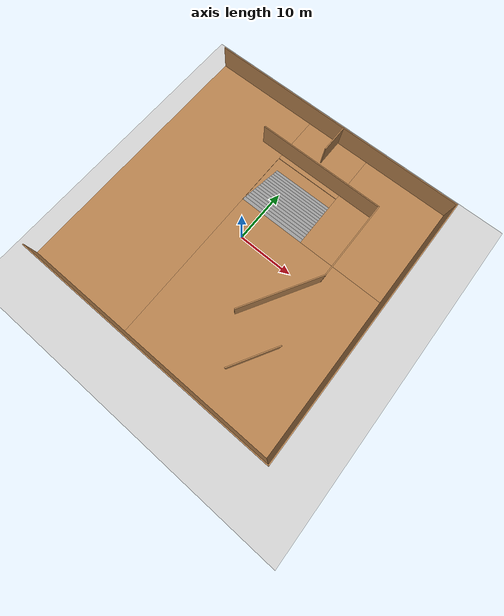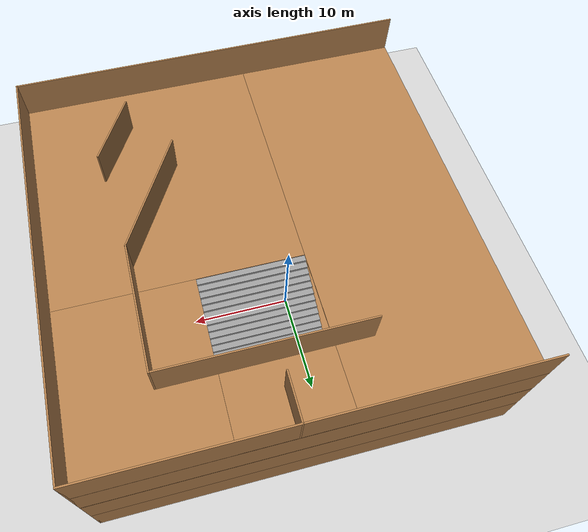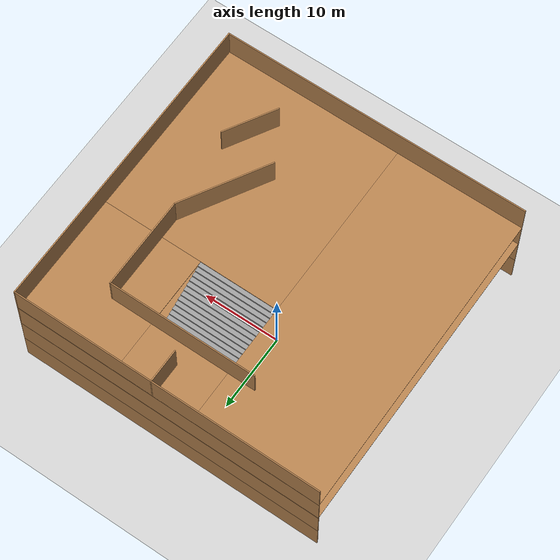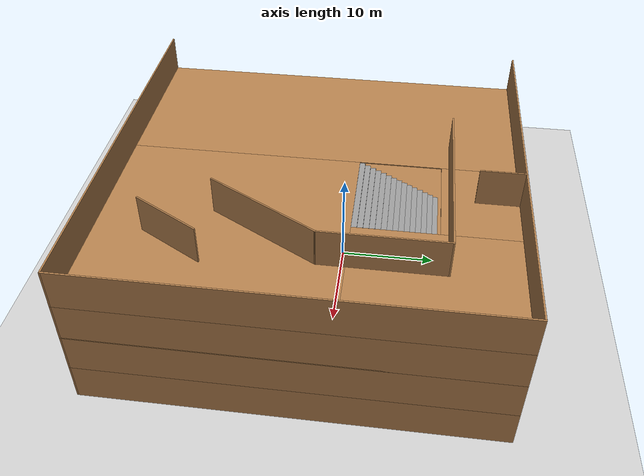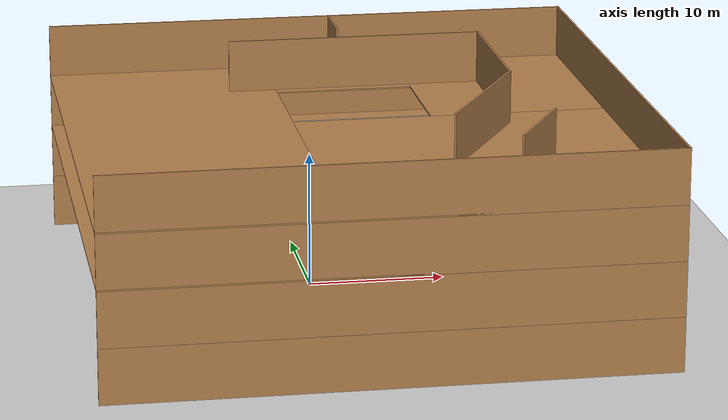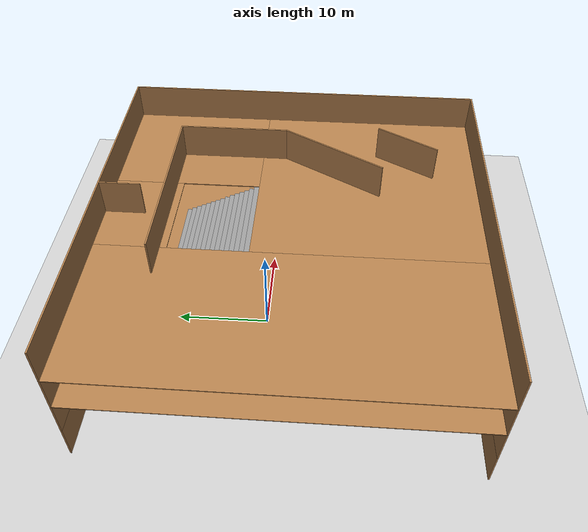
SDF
<sdf version="1.7">
 <world name="default">
  <model name="ground_plane">
   <static>1</static>
   <link name="link">
    <collision name="collision">
     <geometry><plane><normal>0 0 1</normal><size>100 100</size></plane></geometry>
     <surface>
      <contact><collide_bitmask>65535</collide_bitmask></contact>
      <friction><ode><mu>100</mu><mu2>50</mu2></ode></friction>
     </surface>
    </collision>
    <visual name="visual">
     <cast_shadows>0</cast_shadows>
     <geometry><plane><normal>0 0 1</normal><size>100 100</size></plane></geometry>
     <material>
      <script><uri>file://media/materials/scripts/gazebo.material</uri><name>Gazebo/Grey</name></script>
     </material>
    </visual>
   </link>
  </model>
  <model name="building_4F">
   <pose>2.42906 -2.56558 0 0 -0 0</pose>
   <link name="Floor_2">
    <collision name="Floor_2_Collision">
     <geometry><box><size>40.15 40.15 0.1</size></box></geometry>
     <pose>0 0 0.05 0 -0 0</pose>
    </collision>
    <visual name="Floor_2_Visual">
     <pose>0 0 0.05 0 -0 0</pose>
     <geometry><box><size>40.15 40.15 0.1</size></box></geometry>
     <material>
      <script><uri>file://media/materials/scripts/gazebo.material</uri><name>Gazebo/Wood</name></script>
      <ambient>1 1 1 1</ambient>
     </material>
     <meta><layer>2</layer></meta>
    </visual>
    <pose>0.015532 0 8 0 -0 0</pose>
   </link>
   <link name="Floor_3">
    <pose>0.009806 0 12 0 -0 0</pose>
    <visual name="Floor_3_Visual_0">
     <pose>-11.7562 0 0.05 0 -0 0</pose>
     <geometry><box><size>16.6486 40.15 0.1</size></box></geometry>
     <material>
      <script><uri>file://media/materials/scripts/gazebo.material</uri><name>Gazebo/Wood</name></script>
      <ambient>1 1 1 1</ambient>
     </material>
     <meta><layer>3</layer></meta>
    </visual>
    <collision name="Floor_3_Collision_0">
     <geometry><box><size>16.6486 40.15 0.1</size></box></geometry>
     <pose>-11.7562 0 0.05 0 -0 0</pose>
    </collision>
    <visual name="Floor_3_Visual_1">
     <pose>8.32428 -8.0284 0.05 0 -0 0</pose>
     <geometry><box><size>23.5125 24.0932 0.1</size></box></geometry>
     <material>
      <script><uri>file://media/materials/scripts/gazebo.material</uri><name>Gazebo/Wood</name></script>
      <ambient>1 1 1 1</ambient>
     </material>
     <meta><layer>3</layer></meta>
    </visual>
    <collision name="Floor_3_Collision_1">
     <geometry><box><size>23.5125 24.0932 0.1</size></box></geometry>
     <pose>8.32428 -8.0284 0.05 0 -0 0</pose>
    </collision>
    <visual name="Floor_3_Visual_2">
     <pose>13.4528 12.0466 0.05 0 -0 0</pose>
     <geometry><box><size>13.2555 16.0568 0.1</size></box></geometry>
     <material>
      <script><uri>file://media/materials/scripts/gazebo.material</uri><name>Gazebo/Wood</name></script>
      <ambient>1 1 1 1</ambient>
     </material>
     <meta><layer>3</layer></meta>
    </visual>
    <collision name="Floor_3_Collision_2">
     <geometry><box><size>13.2555 16.0568 0.1</size></box></geometry>
     <pose>13.4528 12.0466 0.05 0 -0 0</pose>
    </collision>
    <visual name="Floor_3_Visual_3">
     <pose>1.69654 16.2301 0.05 0 -0 0</pose>
     <geometry><box><size>10.257 7.6898 0.1</size></box></geometry>
     <material>
      <script><uri>file://media/materials/scripts/gazebo.material</uri><name>Gazebo/Wood</name></script>
      <ambient>1 1 1 1</ambient>
     </material>
     <meta><layer>3</layer></meta>
    </visual>
    <collision name="Floor_3_Collision_3">
     <geometry><box><size>10.257 7.6898 0.1</size></box></geometry>
     <pose>1.69654 16.2301 0.05 0 -0 0</pose>
    </collision>
   </link>
   <link name="Stairs_3">
    <visual name="Stairs_3_Visual_0">
     <pose>1.70634 12.1063 8.13333 0 -0 0</pose>
     <geometry><box><size>10.257 0.5578 0.266667</size></box></geometry>
     <material>
      <script><uri>file://media/materials/scripts/gazebo.material</uri><name>Gazebo/Grey</name></script>
      <ambient>1 1 1 1</ambient>
     </material>
     <meta><layer>2</layer></meta>
    </visual>
    <collision name="Stairs_3_Collision_0">
     <geometry><box><size>10.257 0.5578 0.266667</size></box></geometry>
     <pose>1.70634 12.1063 8.13333 0 -0 0</pose>
    </collision>
    <visual name="Stairs_3_Visual_1">
     <pose>1.70634 11.5485 8.4 0 -0 0</pose>
     <geometry><box><size>10.257 0.5578 0.266667</size></box></geometry>
     <material>
      <script><uri>file://media/materials/scripts/gazebo.material</uri><name>Gazebo/Grey</name></script>
      <ambient>1 1 1 1</ambient>
     </material>
     <meta><layer>2</layer></meta>
    </visual>
    <collision name="Stairs_3_Collision_1">
     <geometry><box><size>10.257 0.5578 0.266667</size></box></geometry>
     <pose>1.70634 11.5485 8.4 0 -0 0</pose>
    </collision>
    <visual name="Stairs_3_Visual_2">
     <pose>1.70634 10.9907 8.66667 0 -0 0</pose>
     <geometry><box><size>10.257 0.5578 0.266667</size></box></geometry>
     <material>
      <script><uri>file://media/materials/scripts/gazebo.material</uri><name>Gazebo/Grey</name></script>
      <ambient>1 1 1 1</ambient>
     </material>
     <meta><layer>2</layer></meta>
    </visual>
    <collision name="Stairs_3_Collision_2">
     <geometry><box><size>10.257 0.5578 0.266667</size></box></geometry>
     <pose>1.70634 10.9907 8.66667 0 -0 0</pose>
    </collision>
    <visual name="Stairs_3_Visual_3">
     <pose>1.70634 10.4329 8.93333 0 -0 0</pose>
     <geometry><box><size>10.257 0.5578 0.266667</size></box></geometry>
     <material>
      <script><uri>file://media/materials/scripts/gazebo.material</uri><name>Gazebo/Grey</name></script>
      <ambient>1 1 1 1</ambient>
     </material>
     <meta><layer>2</layer></meta>
    </visual>
    <collision name="Stairs_3_Collision_3">
     <geometry><box><size>10.257 0.5578 0.266667</size></box></geometry>
     <pose>1.70634 10.4329 8.93333 0 -0 0</pose>
    </collision>
    <visual name="Stairs_3_Visual_4">
     <pose>1.70634 9.8751 9.2 0 -0 0</pose>
     <geometry><box><size>10.257 0.5578 0.266667</size></box></geometry>
     <material>
      <script><uri>file://media/materials/scripts/gazebo.material</uri><name>Gazebo/Grey</name></script>
      <ambient>1 1 1 1</ambient>
     </material>
     <meta><layer>2</layer></meta>
    </visual>
    <collision name="Stairs_3_Collision_4">
     <geometry><box><size>10.257 0.5578 0.266667</size></box></geometry>
     <pose>1.70634 9.8751 9.2 0 -0 0</pose>
    </collision>
    <visual name="Stairs_3_Visual_5">
     <pose>1.70634 9.3173 9.46667 0 -0 0</pose>
     <geometry><box><size>10.257 0.5578 0.266667</size></box></geometry>
     <material>
      <script><uri>file://media/materials/scripts/gazebo.material</uri><name>Gazebo/Grey</name></script>
      <ambient>1 1 1 1</ambient>
     </material>
     <meta><layer>2</layer></meta>
    </visual>
    <collision name="Stairs_3_Collision_5">
     <geometry><box><size>10.257 0.5578 0.266667</size></box></geometry>
     <pose>1.70634 9.3173 9.46667 0 -0 0</pose>
    </collision>
    <visual name="Stairs_3_Visual_6">
     <pose>1.70634 8.7595 9.73333 0 -0 0</pose>
     <geometry><box><size>10.257 0.5578 0.266667</size></box></geometry>
     <material>
      <script><uri>file://media/materials/scripts/gazebo.material</uri><name>Gazebo/Grey</name></script>
      <ambient>1 1 1 1</ambient>
     </material>
     <meta><layer>2</layer></meta>
    </visual>
    <collision name="Stairs_3_Collision_6">
     <geometry><box><size>10.257 0.5578 0.266667</size></box></geometry>
     <pose>1.70634 8.7595 9.73333 0 -0 0</pose>
    </collision>
    <visual name="Stairs_3_Visual_7">
     <pose>1.70634 8.2017 10 0 -0 0</pose>
     <geometry><box><size>10.257 0.5578 0.266667</size></box></geometry>
     <material>
      <script><uri>file://media/materials/scripts/gazebo.material</uri><name>Gazebo/Grey</name></script>
      <ambient>1 1 1 1</ambient>
     </material>
     <meta><layer>2</layer></meta>
    </visual>
    <collision name="Stairs_3_Collision_7">
     <geometry><box><size>10.257 0.5578 0.266667</size></box></geometry>
     <pose>1.70634 8.2017 10 0 -0 0</pose>
    </collision>
    <visual name="Stairs_3_Visual_8">
     <pose>1.70634 7.6439 10.2667 0 -0 0</pose>
     <geometry><box><size>10.257 0.5578 0.266667</size></box></geometry>
     <material>
      <script><uri>file://media/materials/scripts/gazebo.material</uri><name>Gazebo/Grey</name></script>
      <ambient>1 1 1 1</ambient>
     </material>
     <meta><layer>2</layer></meta>
    </visual>
    <collision name="Stairs_3_Collision_8">
     <geometry><box><size>10.257 0.5578 0.266667</size></box></geometry>
     <pose>1.70634 7.6439 10.2667 0 -0 0</pose>
    </collision>
    <visual name="Stairs_3_Visual_9">
     <pose>1.70634 7.0861 10.5333 0 -0 0</pose>
     <geometry><box><size>10.257 0.5578 0.266667</size></box></geometry>
     <material>
      <script><uri>file://media/materials/scripts/gazebo.material</uri><name>Gazebo/Grey</name></script>
      <ambient>1 1 1 1</ambient>
     </material>
     <meta><layer>2</layer></meta>
    </visual>
    <collision name="Stairs_3_Collision_9">
     <geometry><box><size>10.257 0.5578 0.266667</size></box></geometry>
     <pose>1.70634 7.0861 10.5333 0 -0 0</pose>
    </collision>
    <visual name="Stairs_3_Visual_10">
     <pose>1.70634 6.5283 10.8 0 -0 0</pose>
     <geometry><box><size>10.257 0.5578 0.266667</size></box></geometry>
     <material>
      <script><uri>file://media/materials/scripts/gazebo.material</uri><name>Gazebo/Grey</name></script>
      <ambient>1 1 1 1</ambient>
     </material>
     <meta><layer>2</layer></meta>
    </visual>
    <collision name="Stairs_3_Collision_10">
     <geometry><box><size>10.257 0.5578 0.266667</size></box></geometry>
     <pose>1.70634 6.5283 10.8 0 -0 0</pose>
    </collision>
    <visual name="Stairs_3_Visual_11">
     <pose>1.70634 5.9705 11.0667 0 -0 0</pose>
     <geometry><box><size>10.257 0.5578 0.266667</size></box></geometry>
     <material>
      <script><uri>file://media/materials/scripts/gazebo.material</uri><name>Gazebo/Grey</name></script>
      <ambient>1 1 1 1</ambient>
     </material>
     <meta><layer>2</layer></meta>
    </visual>
    <collision name="Stairs_3_Collision_11">
     <geometry><box><size>10.257 0.5578 0.266667</size></box></geometry>
     <pose>1.70634 5.9705 11.0667 0 -0 0</pose>
    </collision>
    <visual name="Stairs_3_Visual_12">
     <pose>1.70634 5.4127 11.3333 0 -0 0</pose>
     <geometry><box><size>10.257 0.5578 0.266667</size></box></geometry>
     <material>
      <script><uri>file://media/materials/scripts/gazebo.material</uri><name>Gazebo/Grey</name></script>
      <ambient>1 1 1 1</ambient>
     </material>
     <meta><layer>2</layer></meta>
    </visual>
    <collision name="Stairs_3_Collision_12">
     <geometry><box><size>10.257 0.5578 0.266667</size></box></geometry>
     <pose>1.70634 5.4127 11.3333 0 -0 0</pose>
    </collision>
    <visual name="Stairs_3_Visual_13">
     <pose>1.70634 4.8549 11.6 0 -0 0</pose>
     <geometry><box><size>10.257 0.5578 0.266667</size></box></geometry>
     <material>
      <script><uri>file://media/materials/scripts/gazebo.material</uri><name>Gazebo/Grey</name></script>
      <ambient>1 1 1 1</ambient>
     </material>
     <meta><layer>2</layer></meta>
    </visual>
    <collision name="Stairs_3_Collision_13">
     <geometry><box><size>10.257 0.5578 0.266667</size></box></geometry>
     <pose>1.70634 4.8549 11.6 0 -0 0</pose>
    </collision>
    <visual name="Stairs_3_Visual_14">
     <pose>1.70634 4.2971 11.8667 0 -0 0</pose>
     <geometry><box><size>10.257 0.5578 0.266667</size></box></geometry>
     <material>
      <script><uri>file://media/materials/scripts/gazebo.material</uri><name>Gazebo/Grey</name></script>
      <ambient>1 1 1 1</ambient>
     </material>
     <meta><layer>2</layer></meta>
    </visual>
    <collision name="Stairs_3_Collision_14">
     <geometry><box><size>10.257 0.5578 0.266667</size></box></geometry>
     <pose>1.70634 4.2971 11.8667 0 -0 0</pose>
    </collision>
   </link>
   <link name="Wall_1">
    <collision name="Wall_1_Collision">
     <geometry><box><size>40.15 0.15 4</size></box></geometry>
     <pose>0 0 2 0 -0 0</pose>
    </collision>
    <visual name="Wall_1_Visual">
     <pose>0 0 2 0 -0 0</pose>
     <geometry><box><size>40.15 0.15 4</size></box></geometry>
     <material>
      <script><uri>file://media/materials/scripts/gazebo.material</uri><name>Gazebo/Wood</name></script>
      <ambient>1 1 1 1</ambient>
     </material>
     <meta><layer>0</layer></meta>
    </visual>
    <pose>0.015532 20 0 0 -0 0</pose>
   </link>
   <link name="Wall_11">
    <collision name="Wall_11_Collision">
     <geometry><box><size>14.75 0.15 4</size></box></geometry>
     <pose>0 0 2 0 -0 0</pose>
    </collision>
    <visual name="Wall_11_Visual">
     <pose>0 0 2 0 -0 0</pose>
     <geometry><box><size>14.75 0.15 4</size></box></geometry>
     <material>
      <script><uri>file://media/materials/scripts/gazebo.material</uri><name>Gazebo/Wood</name></script>
      <ambient>1 1 1 1</ambient>
     </material>
     <meta><layer>0</layer></meta>
    </visual>
    <pose>7.81153 6.279 0 0 -0 0</pose>
   </link>
   <link name="Wall_2">
    <collision name="Wall_2_Collision">
     <geometry><box><size>40.15 0.15 4</size></box></geometry>
     <pose>0 0 2 0 -0 0</pose>
    </collision>
    <visual name="Wall_2_Visual">
     <pose>0 0 2 0 -0 0</pose>
     <geometry><box><size>40.15 0.15 4</size></box></geometry>
     <material>
      <script><uri>file://media/materials/scripts/gazebo.material</uri><name>Gazebo/Wood</name></script>
      <ambient>1 1 1 1</ambient>
     </material>
     <meta><layer>0</layer></meta>
    </visual>
    <pose>20.0155 0 0 0 -0 -1.5708</pose>
   </link>
   <link name="Wall_26">
    <collision name="Wall_26_Collision">
     <geometry><box><size>40.15 0.15 4</size></box></geometry>
     <pose>0 0 2 0 -0 0</pose>
    </collision>
    <visual name="Wall_26_Visual">
     <pose>0 0 2 0 -0 0</pose>
     <geometry><box><size>40.15 0.15 4</size></box></geometry>
     <material>
      <script><uri>file://media/materials/scripts/gazebo.material</uri><name>Gazebo/Wood</name></script>
      <ambient>1 1 1 1</ambient>
     </material>
     <meta><layer>1</layer></meta>
    </visual>
    <pose>0.015532 20 4 0 -0 0</pose>
   </link>
   <link name="Wall_27">
    <collision name="Wall_27_Collision">
     <geometry><box><size>40.15 0.15 4</size></box></geometry>
     <pose>0 0 2 0 -0 0</pose>
    </collision>
    <visual name="Wall_27_Visual">
     <pose>0 0 2 0 -0 0</pose>
     <geometry><box><size>40.15 0.15 4</size></box></geometry>
     <material>
      <script><uri>file://media/materials/scripts/gazebo.material</uri><name>Gazebo/Wood</name></script>
      <ambient>1 1 1 1</ambient>
     </material>
     <meta><layer>1</layer></meta>
    </visual>
    <pose>20.0155 0 4 0 -0 -1.5708</pose>
   </link>
   <link name="Wall_28">
    <collision name="Wall_28_Collision">
     <geometry><box><size>40.15 0.15 4</size></box></geometry>
     <pose>0 0 2 0 -0 0</pose>
    </collision>
    <visual name="Wall_28_Visual">
     <pose>0 0 2 0 -0 0</pose>
     <geometry><box><size>40.15 0.15 4</size></box></geometry>
     <material>
      <script><uri>file://media/materials/scripts/gazebo.material</uri><name>Gazebo/Wood</name></script>
      <ambient>1 1 1 1</ambient>
     </material>
     <meta><layer>1</layer></meta>
    </visual>
    <pose>0.015532 -20 4 0 -0 3.14159</pose>
   </link>
   <link name="Wall_3">
    <collision name="Wall_3_Collision">
     <geometry><box><size>40.15 0.15 4</size></box></geometry>
     <pose>0 0 2 0 -0 0</pose>
    </collision>
    <visual name="Wall_3_Visual">
     <pose>0 0 2 0 -0 0</pose>
     <geometry><box><size>40.15 0.15 4</size></box></geometry>
     <material>
      <script><uri>file://media/materials/scripts/gazebo.material</uri><name>Gazebo/Wood</name></script>
      <ambient>1 1 1 1</ambient>
     </material>
     <meta><layer>0</layer></meta>
    </visual>
    <pose>0.015532 -20 0 0 -0 3.14159</pose>
   </link>
   <link name="Wall_35">
    <collision name="Wall_35_Collision">
     <geometry><box><size>10.25 0.15 4</size></box></geometry>
     <pose>0 0 2 0 -0 0</pose>
    </collision>
    <visual name="Wall_35_Visual">
     <pose>0 0 2 0 -0 0</pose>
     <geometry><box><size>10.25 0.15 4</size></box></geometry>
     <material>
      <script><uri>file://media/materials/scripts/gazebo.material</uri><name>Gazebo/Wood</name></script>
      <ambient>1 1 1 1</ambient>
     </material>
     <meta><layer>1</layer></meta>
    </visual>
    <pose>3.88853 8.083 4 0 -0 0</pose>
   </link>
   <link name="Wall_42">
    <collision name="Wall_42_Collision">
     <geometry><box><size>16 0.15 4</size></box></geometry>
     <pose>0 0 2 0 -0 0</pose>
    </collision>
    <visual name="Wall_42_Visual">
     <pose>0 0 2 0 -0 0</pose>
     <geometry><box><size>16 0.15 4</size></box></geometry>
     <material>
      <script><uri>file://media/materials/scripts/gazebo.material</uri><name>Gazebo/Wood</name></script>
      <ambient>1 1 1 1</ambient>
     </material>
     <meta><layer>1</layer></meta>
    </visual>
    <pose>7.51453 1.587 4 0 -0 3.14159</pose>
   </link>
   <link name="Wall_45">
    <collision name="Wall_45_Collision">
     <geometry><box><size>40.15 0.15 4</size></box></geometry>
     <pose>0 0 2 0 -0 0</pose>
    </collision>
    <visual name="Wall_45_Visual">
     <pose>0 0 2 0 -0 0</pose>
     <geometry><box><size>40.15 0.15 4</size></box></geometry>
     <material>
      <script><uri>file://media/materials/scripts/gazebo.material</uri><name>Gazebo/Wood</name></script>
      <ambient>1 1 1 1</ambient>
     </material>
     <meta><layer>2</layer></meta>
    </visual>
    <pose>0.015532 20 8 0 -0 0</pose>
   </link>
   <link name="Wall_46">
    <collision name="Wall_46_Collision">
     <geometry><box><size>40.15 0.15 4</size></box></geometry>
     <pose>0 0 2 0 -0 0</pose>
    </collision>
    <visual name="Wall_46_Visual">
     <pose>0 0 2 0 -0 0</pose>
     <geometry><box><size>40.15 0.15 4</size></box></geometry>
     <material>
      <script><uri>file://media/materials/scripts/gazebo.material</uri><name>Gazebo/Wood</name></script>
      <ambient>1 1 1 1</ambient>
     </material>
     <meta><layer>2</layer></meta>
    </visual>
    <pose>20.0155 0 8 0 -0 -1.5708</pose>
   </link>
   <link name="Wall_47">
    <collision name="Wall_47_Collision">
     <geometry><box><size>40.15 0.15 4</size></box></geometry>
     <pose>0 0 2 0 -0 0</pose>
    </collision>
    <visual name="Wall_47_Visual">
     <pose>0 0 2 0 -0 0</pose>
     <geometry><box><size>40.15 0.15 4</size></box></geometry>
     <material>
      <script><uri>file://media/materials/scripts/gazebo.material</uri><name>Gazebo/Wood</name></script>
      <ambient>1 1 1 1</ambient>
     </material>
     <meta><layer>2</layer></meta>
    </visual>
    <pose>0.015532 -20 8 0 -0 3.14159</pose>
   </link>
   <link name="Wall_55">
    <collision name="Wall_55_Collision">
     <geometry><box><size>29.5 0.15 4</size></box></geometry>
     <pose>0 0 2 0 -0 0</pose>
    </collision>
    <visual name="Wall_55_Visual">
     <pose>0 0 2 0 -0 0</pose>
     <geometry><box><size>29.5 0.15 4</size></box></geometry>
     <material>
      <script><uri>file://media/materials/scripts/gazebo.material</uri><name>Gazebo/Wood</name></script>
      <ambient>1 1 1 1</ambient>
     </material>
     <meta><layer>2</layer></meta>
    </visual>
    <pose>5.31053 -3.618 8 0 -0 0</pose>
   </link>
   <link name="Wall_61">
    <collision name="Wall_61_Collision">
     <geometry><box><size>5.97171 0.15 4</size></box></geometry>
     <pose>0 0 2 0 -0 0</pose>
    </collision>
    <visual name="Wall_61_Visual">
     <pose>0 0 2 0 -0 0</pose>
     <geometry><box><size>5.97171 0.15 4</size></box></geometry>
     <material>
      <script><uri>file://media/materials/scripts/gazebo.material</uri><name>Gazebo/Wood</name></script>
      <ambient>1 1 1 1</ambient>
     </material>
     <meta><layer>2</layer></meta>
    </visual>
    <pose>17.1045 6.187 8 0 -0 3.14159</pose>
   </link>
   <link name="Wall_64">
    <collision name="Wall_64_Collision">
     <geometry><box><size>40.15 0.15 4</size></box></geometry>
     <pose>0 0 2 0 -0 0</pose>
    </collision>
    <visual name="Wall_64_Visual">
     <pose>0 0 2 0 -0 0</pose>
     <geometry><box><size>40.15 0.15 4</size></box></geometry>
     <material>
      <script><uri>file://media/materials/scripts/gazebo.material</uri><name>Gazebo/Wood</name></script>
      <ambient>1 1 1 1</ambient>
     </material>
     <meta><layer>3</layer></meta>
    </visual>
    <pose>0.015532 20 12 0 -0 0</pose>
   </link>
   <link name="Wall_65">
    <collision name="Wall_65_Collision">
     <geometry><box><size>40.15 0.15 4</size></box></geometry>
     <pose>0 0 2 0 -0 0</pose>
    </collision>
    <visual name="Wall_65_Visual">
     <pose>0 0 2 0 -0 0</pose>
     <geometry><box><size>40.15 0.15 4</size></box></geometry>
     <material>
      <script><uri>file://media/materials/scripts/gazebo.material</uri><name>Gazebo/Wood</name></script>
      <ambient>1 1 1 1</ambient>
     </material>
     <meta><layer>3</layer></meta>
    </visual>
    <pose>20.0155 0 12 0 -0 -1.5708</pose>
   </link>
   <link name="Wall_66">
    <collision name="Wall_66_Collision">
     <geometry><box><size>40.15 0.15 4</size></box></geometry>
     <pose>0 0 2 0 -0 0</pose>
    </collision>
    <visual name="Wall_66_Visual">
     <pose>0 0 2 0 -0 0</pose>
     <geometry><box><size>40.15 0.15 4</size></box></geometry>
     <material>
      <script><uri>file://media/materials/scripts/gazebo.material</uri><name>Gazebo/Wood</name></script>
      <ambient>1 1 1 1</ambient>
     </material>
     <meta><layer>3</layer></meta>
    </visual>
    <pose>0.015532 -20 12 0 -0 3.14159</pose>
   </link>
   <link name="Wall_78">
    <collision name="Wall_78_Collision">
     <geometry><box><size>12.25 0.15 4</size></box></geometry>
     <pose>0 0 2 0 -0 0</pose>
    </collision>
    <visual name="Wall_78_Visual">
     <pose>0 0 2 0 -0 0</pose>
     <geometry><box><size>12.25 0.15 4</size></box></geometry>
     <material>
      <script><uri>file://media/materials/scripts/gazebo.material</uri><name>Gazebo/Wood</name></script>
      <ambient>1 1 1 1</ambient>
     </material>
     <meta><layer>3</layer></meta>
    </visual>
    <pose>9.15953 -3.9025 12 0 -0 1.0472</pose>
   </link>
   <link name="Wall_79">
    <collision name="Wall_79_Collision">
     <geometry><box><size>12 0.15 4</size></box></geometry>
     <pose>0 0 2 0 -0 0</pose>
    </collision>
    <visual name="Wall_79_Visual">
     <pose>0 0 2 0 -0 0</pose>
     <geometry><box><size>12 0.15 4</size></box></geometry>
     <material>
      <script><uri>file://media/materials/scripts/gazebo.material</uri><name>Gazebo/Wood</name></script>
      <ambient>1 1 1 1</ambient>
     </material>
     <meta><layer>3</layer></meta>
    </visual>
    <pose>12.1845 7.262 12 0 -0 1.5708</pose>
   </link>
   <link name="Wall_80">
    <collision name="Wall_80_Collision">
     <geometry><box><size>19.25 0.15 4</size></box></geometry>
     <pose>0 0 2 0 -0 0</pose>
    </collision>
    <visual name="Wall_80_Visual">
     <pose>0 0 2 0 -0 0</pose>
     <geometry><box><size>19.25 0.15 4</size></box></geometry>
     <material>
      <script><uri>file://media/materials/scripts/gazebo.material</uri><name>Gazebo/Wood</name></script>
      <ambient>1 1 1 1</ambient>
     </material>
     <meta><layer>3</layer></meta>
    </visual>
    <pose>2.63453 13.187 12 0 -0 3.14159</pose>
   </link>
   <link name="Wall_82">
    <collision name="Wall_82_Collision">
     <geometry><box><size>4.44315 0.15 4</size></box></geometry>
     <pose>0 0 2 0 -0 0</pose>
    </collision>
    <visual name="Wall_82_Visual">
     <pose>0 0 2 0 -0 0</pose>
     <geometry><box><size>4.44315 0.15 4</size></box></geometry>
     <material>
      <script><uri>file://media/materials/scripts/gazebo.material</uri><name>Gazebo/Wood</name></script>
      <ambient>1 1 1 1</ambient>
     </material>
     <meta><layer>3</layer></meta>
    </visual>
    <pose>1.70253 17.8535 12 0 -0 -1.5708</pose>
   </link>
   <link name="Wall_86">
    <collision name="Wall_86_Collision">
     <geometry><box><size>7.25 0.15 4</size></box></geometry>
     <pose>0 0 2 0 -0 0</pose>
    </collision>
    <visual name="Wall_86_Visual">
     <pose>0 0 2 0 -0 0</pose>
     <geometry><box><size>7.25 0.15 4</size></box></geometry>
     <material>
      <script><uri>file://media/materials/scripts/gazebo.material</uri><name>Gazebo/Wood</name></script>
      <ambient>1 1 1 1</ambient>
     </material>
     <meta><layer>3</layer></meta>
    </visual>
    <pose>11.4525 -12.0785 12 0 -0 1.04721</pose>
   </link>
   <link name="Wall_9">
    <collision name="Wall_9_Collision">
     <geometry><box><size>7.797 0.15 4</size></box></geometry>
     <pose>0 0 2 0 -0 0</pose>
    </collision>
    <visual name="Wall_9_Visual">
     <pose>0 0 2 0 -0 0</pose>
     <geometry><box><size>7.797 0.15 4</size></box></geometry>
     <material>
      <script><uri>file://media/materials/scripts/gazebo.material</uri><name>Gazebo/Wood</name></script>
      <ambient>1 1 1 1</ambient>
     </material>
     <meta><layer>0</layer></meta>
    </visual>
    <pose>7.54653 10.1025 0 0 -0 -1.5708</pose>
   </link>
   <static>1</static>
  </model>
 </world>
</sdf>
